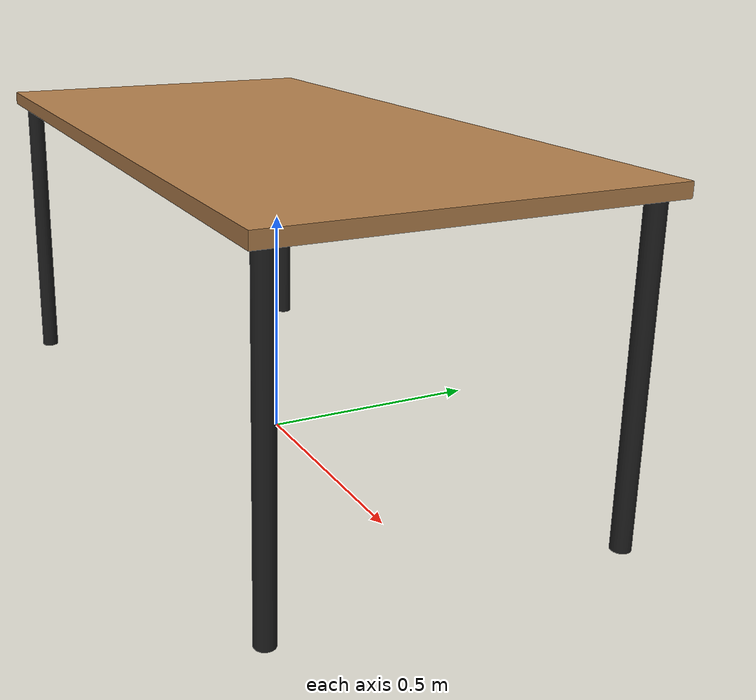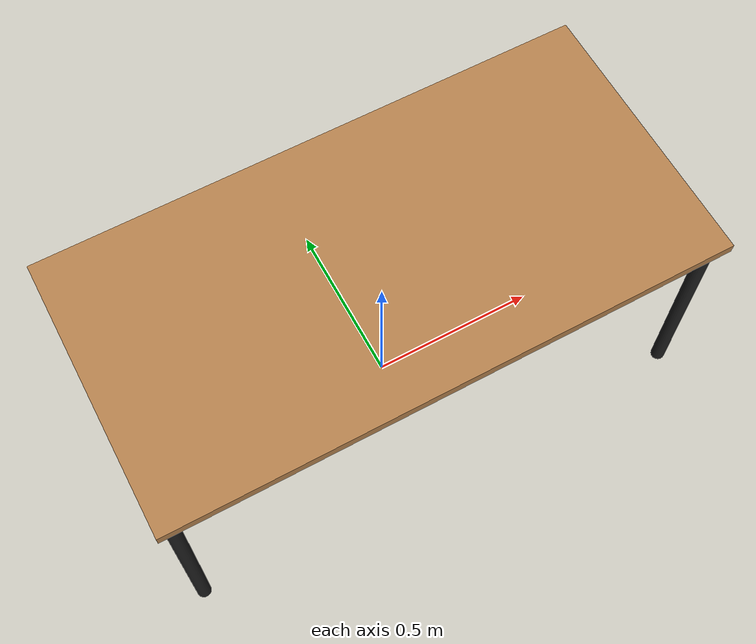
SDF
<?xml version="1.0" encoding="utf-8"?>
<!-- |    This document was autogenerated by xacro from table.sdf.xacro                | -->
<!-- |    EDITING THIS FILE BY HAND IS NOT RECOMMENDED                                 | -->
<sdf version="1.5" xmlns:xacro="http://www.ros.org/wiki/xacro">
  <model name="table">
    <static>true</static>
    <link name="link">
      <collision name="leg_SE">
        <pose>-0.76 -0.36 0.335 0 0 0</pose>
        <geometry>
          <cylinder>
            <radius>0.02</radius>
            <length>0.67</length>
          </cylinder>
        </geometry>
        <max_contacts>10</max_contacts>
      </collision>
      <visual name="leg_SE">
        <pose>-0.76 -0.36 0.335 0 0 0</pose>
        <geometry>
          <cylinder>
            <radius>0.02</radius>
            <length>0.67</length>
          </cylinder>
        </geometry>
        <material>
          <script>
            <name>Gazebo/Black</name>
          </script>
        </material>
      </visual>
      <collision name="leg_NE">
        <pose>-0.76 0.36 0.335 0 0 0</pose>
        <geometry>
          <cylinder>
            <radius>0.02</radius>
            <length>0.67</length>
          </cylinder>
        </geometry>
        <max_contacts>10</max_contacts>
      </collision>
      <visual name="leg_NE">
        <pose>-0.76 0.36 0.335 0 0 0</pose>
        <geometry>
          <cylinder>
            <radius>0.02</radius>
            <length>0.67</length>
          </cylinder>
        </geometry>
        <material>
          <script>
            <name>Gazebo/Black</name>
          </script>
        </material>
      </visual>
      <collision name="leg_NW">
        <pose>0.76 0.36 0.335 0 0 0</pose>
        <geometry>
          <cylinder>
            <radius>0.02</radius>
            <length>0.67</length>
          </cylinder>
        </geometry>
        <max_contacts>10</max_contacts>
      </collision>
      <visual name="leg_NW">
        <pose>0.76 0.36 0.335 0 0 0</pose>
        <geometry>
          <cylinder>
            <radius>0.02</radius>
            <length>0.67</length>
          </cylinder>
        </geometry>
        <material>
          <script>
            <name>Gazebo/Black</name>
          </script>
        </material>
      </visual>
      <collision name="leg_SW">
        <pose>0.76 -0.36 0.335 0 0 0</pose>
        <geometry>
          <cylinder>
            <radius>0.02</radius>
            <length>0.67</length>
          </cylinder>
        </geometry>
        <max_contacts>10</max_contacts>
      </collision>
      <visual name="leg_SW">
        <pose>0.76 -0.36 0.335 0 0 0</pose>
        <geometry>
          <cylinder>
            <radius>0.02</radius>
            <length>0.67</length>
          </cylinder>
        </geometry>
        <material>
          <script>
            <name>Gazebo/Black</name>
          </script>
        </material>
      </visual>
      <collision name="top">
        <pose>0 0 0.685 0 0 0</pose>
        <geometry>
          <box>
            <size>1.6 0.8 0.03</size>
          </box>
        </geometry>
        <surface>
          <friction>
            <ode>
              <mu>1000</mu>
              <mu2>1000</mu2>
            </ode>
            <torsional>
              <ode/>
            </torsional>
          </friction>
          <contact>
            <ode/>
          </contact>
          <bounce/>
        </surface>
      </collision>
      <visual name="top">
        <pose>0 0 0.685 0 0 0</pose>
        <geometry>
          <box>
            <size>1.6 0.8 0.03</size>
          </box>
        </geometry>
        <material>
          <script>
            <name>Gazebo/Wood</name>
          </script>
        </material>
      </visual>
    </link>
  </model>
</sdf>
